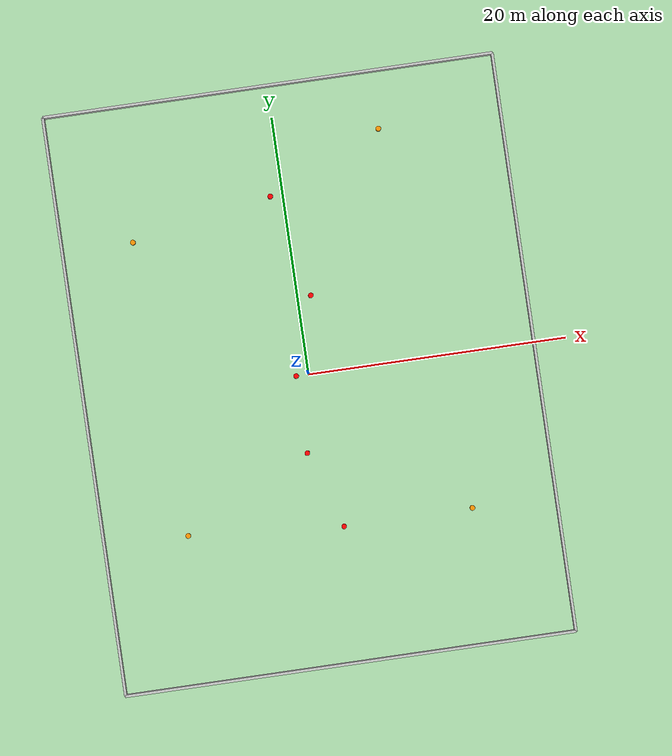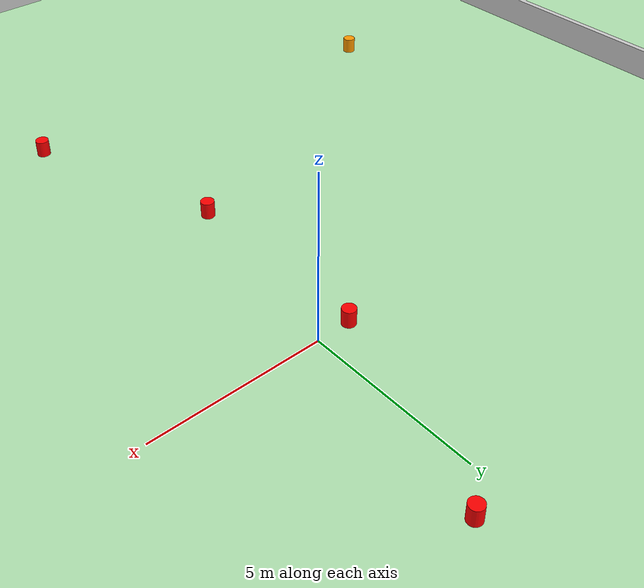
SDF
<?xml version="1.0" ?>
<sdf version="1.9">
  <world name="pioneer_cone_world">
    <gravity>0 0 -9.8</gravity>
    <magnetic_field>6e-06 2.3e-05 -4.2e-05</magnetic_field>
    <physics name="1ms" type="ignored">
      <max_step_size>0.001</max_step_size>
      <real_time_factor>1.0</real_time_factor>
    </physics>
    <plugin filename="gz-sim-physics-system" name="gz::sim::systems::Physics"/>
    <plugin filename="gz-sim-user-commands-system" name="gz::sim::systems::UserCommands"/>
    <plugin filename="gz-sim-scene-broadcaster-system" name="gz::sim::systems::SceneBroadcaster"/>
    <!-- Harmonic on Parallels is more stable with classic Ogre than Ogre2. -->
    <plugin filename="gz-sim-sensors-system" name="gz::sim::systems::Sensors">
      <render_engine>ogre</render_engine>
    </plugin>

    <scene>
      <ambient>0.45 0.45 0.45 1</ambient>
      <background>0.8 0.9 1.0 1</background>
      <shadows>true</shadows>
    </scene>

    <light type="directional" name="sun">
      <cast_shadows>true</cast_shadows>
      <pose>0 0 10 0 0 0</pose>
      <diffuse>0.8 0.8 0.8 1</diffuse>
      <specular>0.2 0.2 0.2 1</specular>
      <direction>-0.5 0.1 -0.9</direction>
    </light>

    <model name="ground_plane">
      <static>true</static>
      <link name="link">
        <collision name="collision">
          <geometry>
            <plane>
              <normal>0 0 1</normal>
              <size>35 45</size>
            </plane>
          </geometry>
        </collision>
        <visual name="visual">
          <geometry>
            <plane>
              <normal>0 0 1</normal>
              <size>35 45</size>
            </plane>
          </geometry>
          <material>
            <ambient>0.7 0.9 0.7 1</ambient> <diffuse>0.7 0.9 0.7 1</diffuse>
            <specular>0.1 0.1 0.1 1</specular>
          </material>
        </visual>
      </link>
    </model>

    <model name="boundary_walls">
      <static>true</static>
      <link name="north_wall">
        <pose>0 22.5 0.5 0 0 0</pose>
        <collision name="collision"><geometry><box><size>35 0.2 1</size></box></geometry></collision>
        <visual name="visual"><geometry><box><size>35 0.2 1</size></box></geometry>
          <material><ambient>0.8 0.8 0.8 1</ambient><diffuse>0.8 0.8 0.8 1</diffuse></material>
        </visual>
      </link>
      <link name="south_wall">
        <pose>0 -22.5 0.5 0 0 0</pose>
        <collision name="collision"><geometry><box><size>35 0.2 1</size></box></geometry></collision>
        <visual name="visual"><geometry><box><size>35 0.2 1</size></box></geometry>
          <material><ambient>0.8 0.8 0.8 1</ambient><diffuse>0.8 0.8 0.8 1</diffuse></material>
        </visual>
      </link>
      <link name="east_wall">
        <pose>17.5 0 0.5 0 0 0</pose>
        <collision name="collision"><geometry><box><size>0.2 45 1</size></box></geometry></collision>
        <visual name="visual"><geometry><box><size>0.2 45 1</size></box></geometry>
          <material><ambient>0.8 0.8 0.8 1</ambient><diffuse>0.8 0.8 0.8 1</diffuse></material>
        </visual>
      </link>
      <link name="west_wall">
        <pose>-17.5 0 0.5 0 0 0</pose>
        <collision name="collision"><geometry><box><size>0.2 45 1</size></box></geometry></collision>
        <visual name="visual"><geometry><box><size>0.2 45 1</size></box></geometry>
          <material><ambient>0.8 0.8 0.8 1</ambient><diffuse>0.8 0.8 0.8 1</diffuse></material>
        </visual>
      </link>
    </model>

    <!-- Pioneer is spawned by sim_bringup.launch.py at (0, -18, 0.25), facing north. -->

    <model name="red_cone_1"><pose>1 -12 0.25 0 0 0</pose><static>true</static><link name="link"><visual name="v"><geometry><cylinder><radius>0.2</radius><length>0.5</length></cylinder></geometry><material><ambient>1 0 0 1</ambient><diffuse>1 0 0 1</diffuse></material></visual><collision name="c"><geometry><cylinder><radius>0.2</radius><length>0.5</length></cylinder></geometry></collision></link></model>
    <model name="red_cone_2"><pose>-1 -6 0.25 0 0 0</pose><static>true</static><link name="link"><visual name="v"><geometry><cylinder><radius>0.2</radius><length>0.5</length></cylinder></geometry><material><ambient>1 0 0 1</ambient><diffuse>1 0 0 1</diffuse></material></visual><collision name="c"><geometry><cylinder><radius>0.2</radius><length>0.5</length></cylinder></geometry></collision></link></model>
    <model name="red_cone_3"><pose>-1 0 0.25 0 0 0</pose><static>true</static><link name="link"><visual name="v"><geometry><cylinder><radius>0.2</radius><length>0.5</length></cylinder></geometry><material><ambient>1 0 0 1</ambient><diffuse>1 0 0 1</diffuse></material></visual><collision name="c"><geometry><cylinder><radius>0.2</radius><length>0.5</length></cylinder></geometry></collision></link></model>
    <model name="red_cone_4"><pose>1 6 0.25 0 0 0</pose><static>true</static><link name="link"><visual name="v"><geometry><cylinder><radius>0.2</radius><length>0.5</length></cylinder></geometry><material><ambient>1 0 0 1</ambient><diffuse>1 0 0 1</diffuse></material></visual><collision name="c"><geometry><cylinder><radius>0.2</radius><length>0.5</length></cylinder></geometry></collision></link></model>
    <model name="red_cone_5"><pose>-1 14 0.25 0 0 0</pose><static>true</static><link name="link"><visual name="v"><geometry><cylinder><radius>0.2</radius><length>0.5</length></cylinder></geometry><material><ambient>1 0 0 1</ambient><diffuse>1 0 0 1</diffuse></material></visual><collision name="c"><geometry><cylinder><radius>0.2</radius><length>0.5</length></cylinder></geometry></collision></link></model>

    <model name="orange_cone_1"><pose>8 18 0.25 0 0 0</pose><static>true</static><link name="link"><visual name="v"><geometry><cylinder><radius>0.2</radius><length>0.5</length></cylinder></geometry><material><ambient>1 0.6 0 1</ambient><diffuse>1 0.6 0 1</diffuse></material></visual><collision name="c"><geometry><cylinder><radius>0.2</radius><length>0.5</length></cylinder></geometry></collision></link></model>
    <model name="orange_cone_2"><pose>-12 12 0.25 0 0 0</pose><static>true</static><link name="link"><visual name="v"><geometry><cylinder><radius>0.2</radius><length>0.5</length></cylinder></geometry><material><ambient>1 0.6 0 1</ambient><diffuse>1 0.6 0 1</diffuse></material></visual><collision name="c"><geometry><cylinder><radius>0.2</radius><length>0.5</length></cylinder></geometry></collision></link></model>
    <model name="orange_cone_3"><pose>-11 -11 0.25 0 0 0</pose><static>true</static><link name="link"><visual name="v"><geometry><cylinder><radius>0.2</radius><length>0.5</length></cylinder></geometry><material><ambient>1 0.6 0 1</ambient><diffuse>1 0.6 0 1</diffuse></material></visual><collision name="c"><geometry><cylinder><radius>0.2</radius><length>0.5</length></cylinder></geometry></collision></link></model>
    <model name="orange_cone_4"><pose>11 -12 0.25 0 0 0</pose><static>true</static><link name="link"><visual name="v"><geometry><cylinder><radius>0.2</radius><length>0.5</length></cylinder></geometry><material><ambient>1 0.6 0 1</ambient><diffuse>1 0.6 0 1</diffuse></material></visual><collision name="c"><geometry><cylinder><radius>0.2</radius><length>0.5</length></cylinder></geometry></collision></link></model>

    </world>
</sdf>
